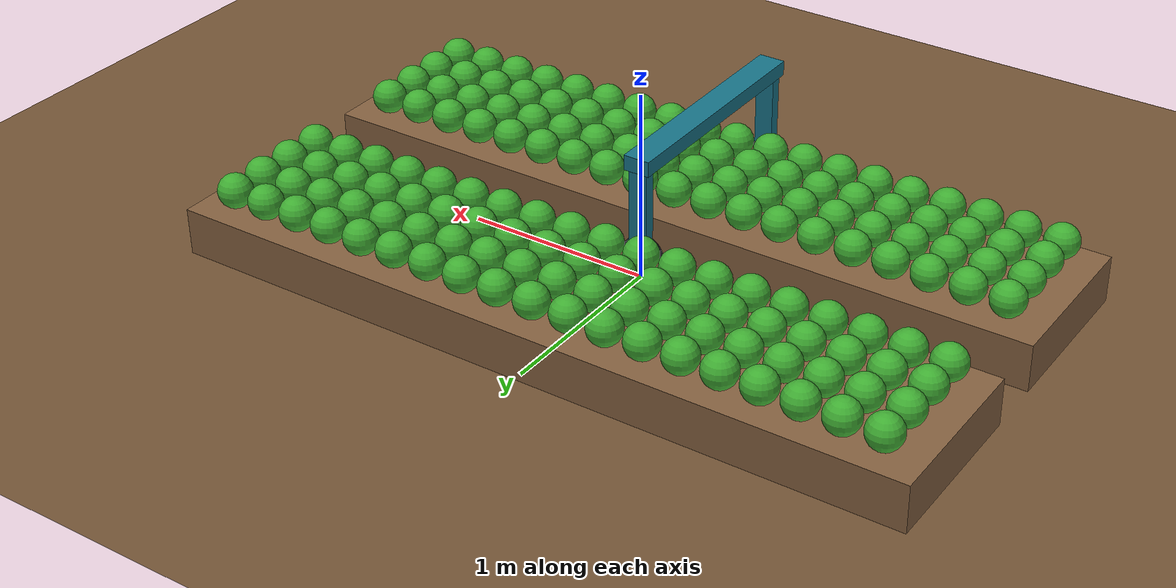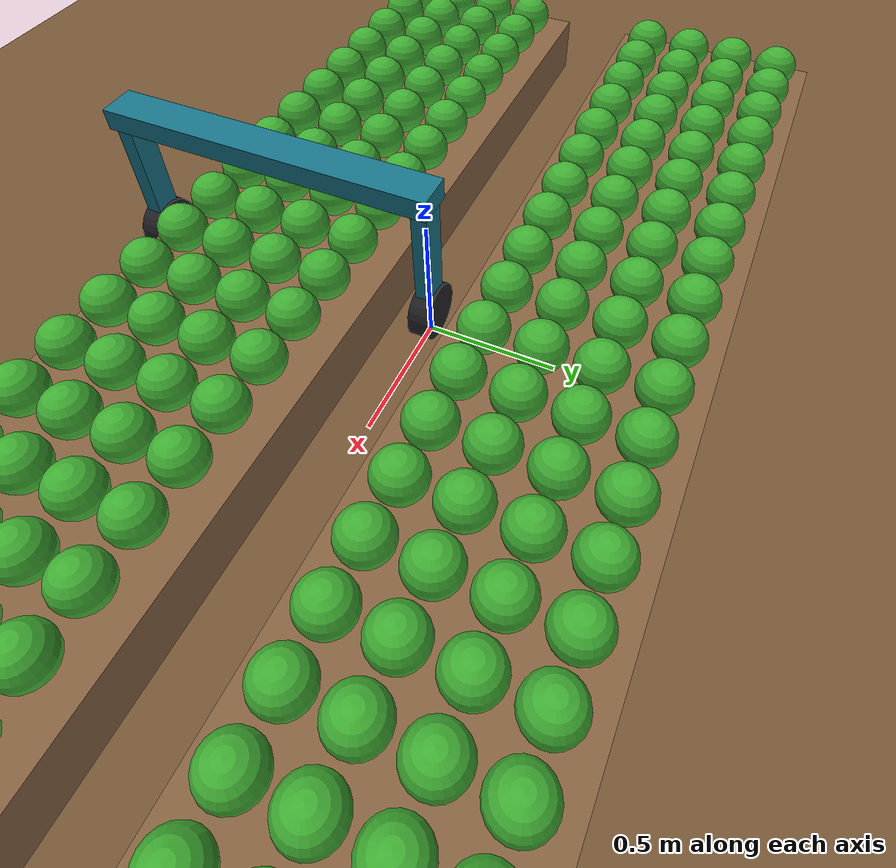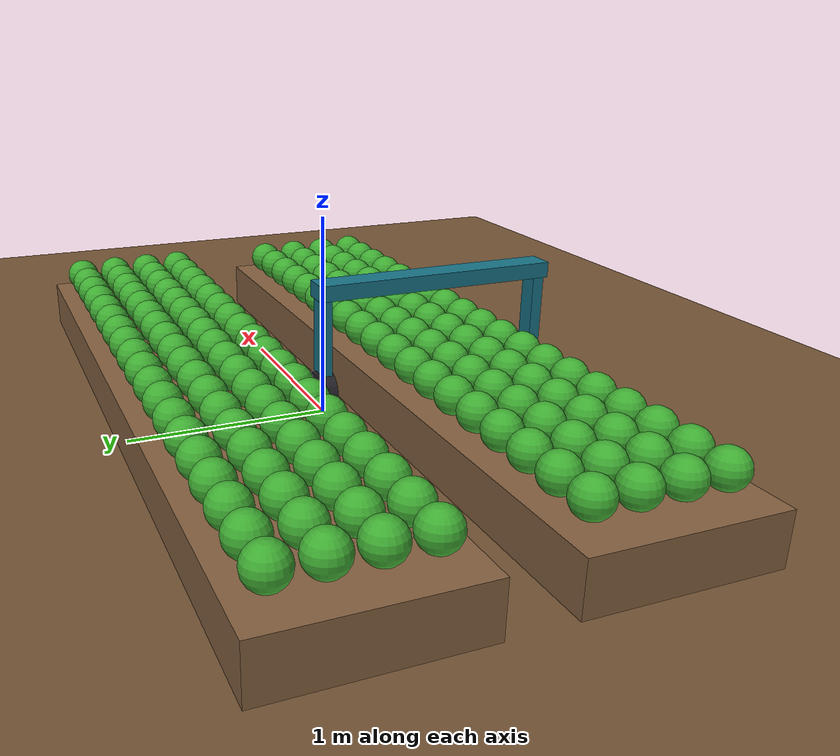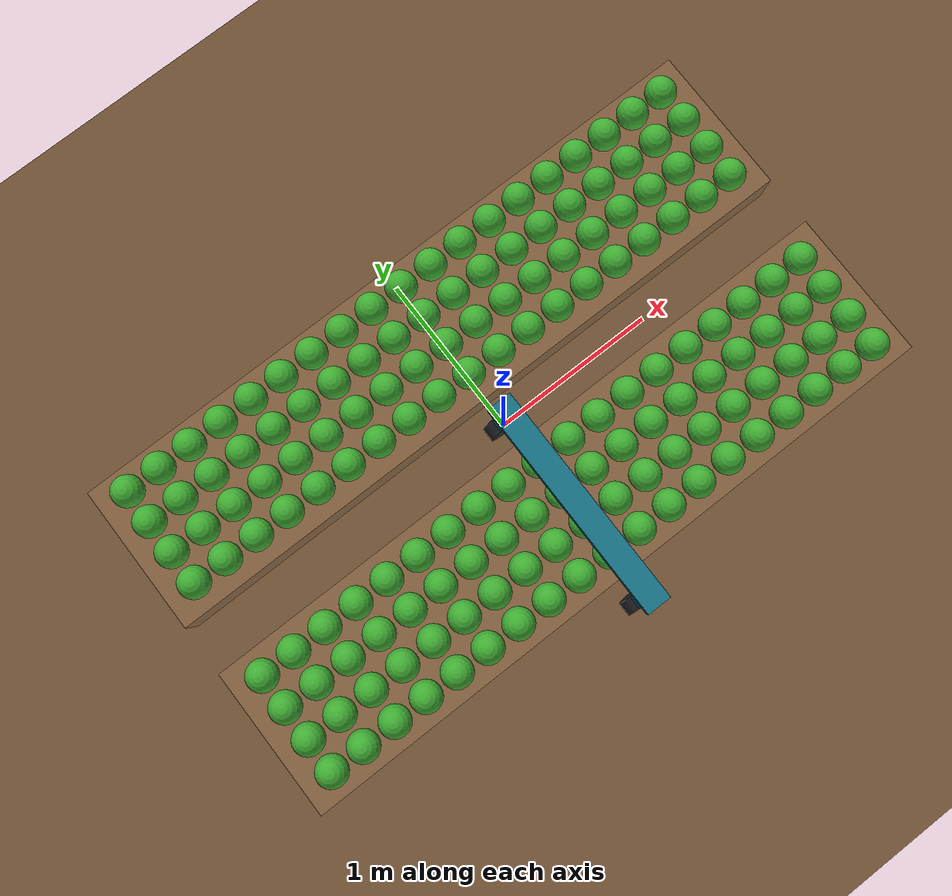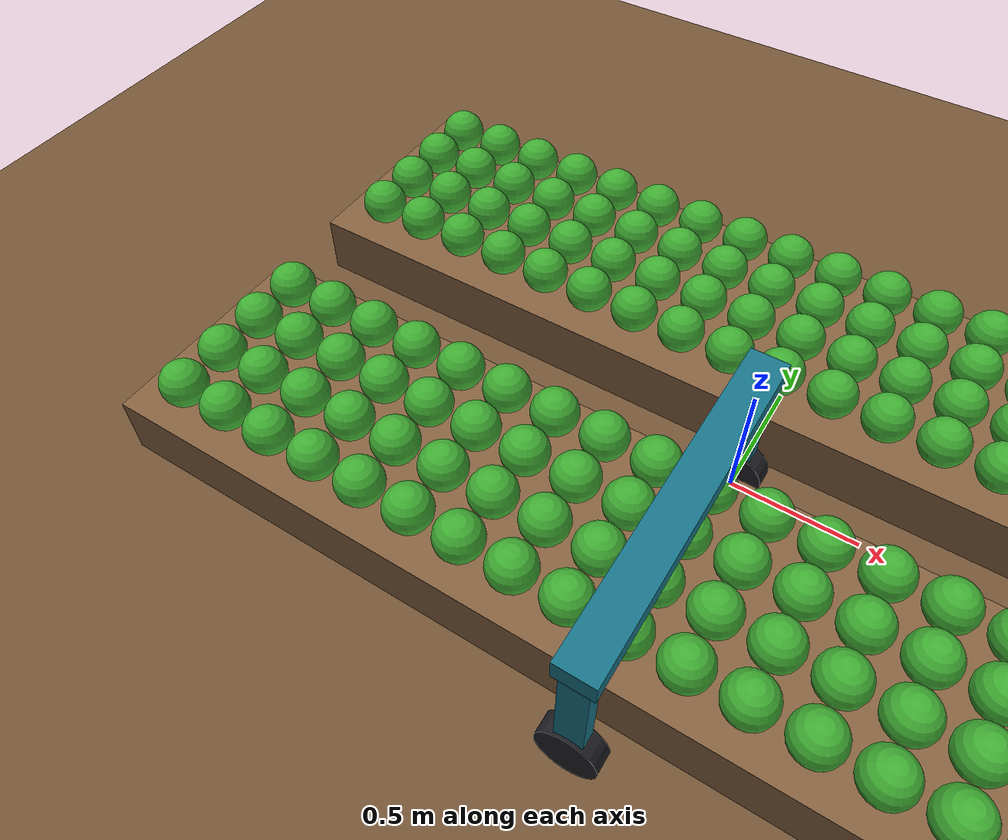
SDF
<?xml version="1.0" ?>
<sdf version="1.9">
  <world name="garden">
    <physics name="1ms" type="ignored">
      <max_step_size>0.001</max_step_size>
      <real_time_factor>1.0</real_time_factor>
    </physics>
    <plugin filename="ignition-gazebo-physics-system"
            name="ignition::gazebo::systems::Physics"/>
    <plugin filename="ignition-gazebo-sensors-system"
            name="ignition::gazebo::systems::Sensors">
      <render_engine>ogre2</render_engine>
    </plugin>
    <plugin filename="ignition-gazebo-scene-broadcaster-system"
            name="ignition::gazebo::systems::SceneBroadcaster"/>

    <light type="directional" name="sun">
      <cast_shadows>true</cast_shadows>
      <pose>0 0 10 0 0 0</pose>
      <diffuse>1 1 1 1</diffuse>
      <specular>0.3 0.3 0.3 1</specular>
      <direction>-0.4 0.5 -0.85</direction>
    </light>

    <!-- 고랑 바닥 = 기준면 z=0. 로봇 바퀴가 굴러가는 곳. -->
    <model name="furrow_floor">
      <static>true</static>
      <link name="link">
        <collision name="collision">
          <geometry><plane><normal>0 0 1</normal><size>30 30</size></plane></geometry>
        </collision>
        <visual name="visual">
          <geometry><plane><normal>0 0 1</normal><size>30 30</size></plane></geometry>
          <material>
            <ambient>0.28 0.20 0.13 1</ambient>
            <diffuse>0.45 0.33 0.21 1</diffuse>
          </material>
        </visual>
      </link>
    </model>

    <!-- 두둑 1 · 중심 y=-0.60m · 윗면 z=0.25m -->
    <model name="bed_1">
      <static>true</static>
      <pose>0 -0.600 0.125 0 0 0</pose>
      <link name="link">
        <collision name="collision">
          <geometry><box><size>4.00 0.90 0.25</size></box></geometry>
        </collision>
        <visual name="visual">
          <geometry><box><size>4.00 0.90 0.25</size></box></geometry>
          <material>
            <ambient>0.32 0.23 0.15 1</ambient>
            <diffuse>0.52 0.38 0.25 1</diffuse>
          </material>
        </visual>
      </link>
    </model>

    <model name="crop_1_0_0">
      <static>true</static>
      <pose>-1.800 -0.900 0.350 0 0 0</pose>
      <link name="link"><visual name="visual">
        <geometry><sphere><radius>0.09</radius></sphere></geometry>
        <material><ambient>0.10 0.30 0.08 1</ambient>
                  <diffuse>0.25 0.68 0.20 1</diffuse></material>
      </visual></link>
    </model>
    <model name="crop_1_0_1">
      <static>true</static>
      <pose>-1.600 -0.900 0.350 0 0 0</pose>
      <link name="link"><visual name="visual">
        <geometry><sphere><radius>0.09</radius></sphere></geometry>
        <material><ambient>0.10 0.30 0.08 1</ambient>
                  <diffuse>0.25 0.68 0.20 1</diffuse></material>
      </visual></link>
    </model>
    <model name="crop_1_0_2">
      <static>true</static>
      <pose>-1.400 -0.900 0.350 0 0 0</pose>
      <link name="link"><visual name="visual">
        <geometry><sphere><radius>0.09</radius></sphere></geometry>
        <material><ambient>0.10 0.30 0.08 1</ambient>
                  <diffuse>0.25 0.68 0.20 1</diffuse></material>
      </visual></link>
    </model>
    <model name="crop_1_0_3">
      <static>true</static>
      <pose>-1.200 -0.900 0.350 0 0 0</pose>
      <link name="link"><visual name="visual">
        <geometry><sphere><radius>0.09</radius></sphere></geometry>
        <material><ambient>0.10 0.30 0.08 1</ambient>
                  <diffuse>0.25 0.68 0.20 1</diffuse></material>
      </visual></link>
    </model>
    <model name="crop_1_0_4">
      <static>true</static>
      <pose>-1.000 -0.900 0.350 0 0 0</pose>
      <link name="link"><visual name="visual">
        <geometry><sphere><radius>0.09</radius></sphere></geometry>
        <material><ambient>0.10 0.30 0.08 1</ambient>
                  <diffuse>0.25 0.68 0.20 1</diffuse></material>
      </visual></link>
    </model>
    <model name="crop_1_0_5">
      <static>true</static>
      <pose>-0.800 -0.900 0.350 0 0 0</pose>
      <link name="link"><visual name="visual">
        <geometry><sphere><radius>0.09</radius></sphere></geometry>
        <material><ambient>0.10 0.30 0.08 1</ambient>
                  <diffuse>0.25 0.68 0.20 1</diffuse></material>
      </visual></link>
    </model>
    <model name="crop_1_0_6">
      <static>true</static>
      <pose>-0.600 -0.900 0.350 0 0 0</pose>
      <link name="link"><visual name="visual">
        <geometry><sphere><radius>0.09</radius></sphere></geometry>
        <material><ambient>0.10 0.30 0.08 1</ambient>
                  <diffuse>0.25 0.68 0.20 1</diffuse></material>
      </visual></link>
    </model>
    <model name="crop_1_0_7">
      <static>true</static>
      <pose>-0.400 -0.900 0.350 0 0 0</pose>
      <link name="link"><visual name="visual">
        <geometry><sphere><radius>0.09</radius></sphere></geometry>
        <material><ambient>0.10 0.30 0.08 1</ambient>
                  <diffuse>0.25 0.68 0.20 1</diffuse></material>
      </visual></link>
    </model>
    <model name="crop_1_0_8">
      <static>true</static>
      <pose>-0.200 -0.900 0.350 0 0 0</pose>
      <link name="link"><visual name="visual">
        <geometry><sphere><radius>0.09</radius></sphere></geometry>
        <material><ambient>0.10 0.30 0.08 1</ambient>
                  <diffuse>0.25 0.68 0.20 1</diffuse></material>
      </visual></link>
    </model>
    <model name="crop_1_0_9">
      <static>true</static>
      <pose>0.000 -0.900 0.350 0 0 0</pose>
      <link name="link"><visual name="visual">
        <geometry><sphere><radius>0.09</radius></sphere></geometry>
        <material><ambient>0.10 0.30 0.08 1</ambient>
                  <diffuse>0.25 0.68 0.20 1</diffuse></material>
      </visual></link>
    </model>
    <model name="crop_1_0_10">
      <static>true</static>
      <pose>0.200 -0.900 0.350 0 0 0</pose>
      <link name="link"><visual name="visual">
        <geometry><sphere><radius>0.09</radius></sphere></geometry>
        <material><ambient>0.10 0.30 0.08 1</ambient>
                  <diffuse>0.25 0.68 0.20 1</diffuse></material>
      </visual></link>
    </model>
    <model name="crop_1_0_11">
      <static>true</static>
      <pose>0.400 -0.900 0.350 0 0 0</pose>
      <link name="link"><visual name="visual">
        <geometry><sphere><radius>0.09</radius></sphere></geometry>
        <material><ambient>0.10 0.30 0.08 1</ambient>
                  <diffuse>0.25 0.68 0.20 1</diffuse></material>
      </visual></link>
    </model>
    <model name="crop_1_0_12">
      <static>true</static>
      <pose>0.600 -0.900 0.350 0 0 0</pose>
      <link name="link"><visual name="visual">
        <geometry><sphere><radius>0.09</radius></sphere></geometry>
        <material><ambient>0.10 0.30 0.08 1</ambient>
                  <diffuse>0.25 0.68 0.20 1</diffuse></material>
      </visual></link>
    </model>
    <model name="crop_1_0_13">
      <static>true</static>
      <pose>0.800 -0.900 0.350 0 0 0</pose>
      <link name="link"><visual name="visual">
        <geometry><sphere><radius>0.09</radius></sphere></geometry>
        <material><ambient>0.10 0.30 0.08 1</ambient>
                  <diffuse>0.25 0.68 0.20 1</diffuse></material>
      </visual></link>
    </model>
    <model name="crop_1_0_14">
      <static>true</static>
      <pose>1.000 -0.900 0.350 0 0 0</pose>
      <link name="link"><visual name="visual">
        <geometry><sphere><radius>0.09</radius></sphere></geometry>
        <material><ambient>0.10 0.30 0.08 1</ambient>
                  <diffuse>0.25 0.68 0.20 1</diffuse></material>
      </visual></link>
    </model>
    <model name="crop_1_0_15">
      <static>true</static>
      <pose>1.200 -0.900 0.350 0 0 0</pose>
      <link name="link"><visual name="visual">
        <geometry><sphere><radius>0.09</radius></sphere></geometry>
        <material><ambient>0.10 0.30 0.08 1</ambient>
                  <diffuse>0.25 0.68 0.20 1</diffuse></material>
      </visual></link>
    </model>
    <model name="crop_1_0_16">
      <static>true</static>
      <pose>1.400 -0.900 0.350 0 0 0</pose>
      <link name="link"><visual name="visual">
        <geometry><sphere><radius>0.09</radius></sphere></geometry>
        <material><ambient>0.10 0.30 0.08 1</ambient>
                  <diffuse>0.25 0.68 0.20 1</diffuse></material>
      </visual></link>
    </model>
    <model name="crop_1_0_17">
      <static>true</static>
      <pose>1.600 -0.900 0.350 0 0 0</pose>
      <link name="link"><visual name="visual">
        <geometry><sphere><radius>0.09</radius></sphere></geometry>
        <material><ambient>0.10 0.30 0.08 1</ambient>
                  <diffuse>0.25 0.68 0.20 1</diffuse></material>
      </visual></link>
    </model>
    <model name="crop_1_0_18">
      <static>true</static>
      <pose>1.800 -0.900 0.350 0 0 0</pose>
      <link name="link"><visual name="visual">
        <geometry><sphere><radius>0.09</radius></sphere></geometry>
        <material><ambient>0.10 0.30 0.08 1</ambient>
                  <diffuse>0.25 0.68 0.20 1</diffuse></material>
      </visual></link>
    </model>
    <model name="crop_1_1_0">
      <static>true</static>
      <pose>-1.800 -0.700 0.350 0 0 0</pose>
      <link name="link"><visual name="visual">
        <geometry><sphere><radius>0.09</radius></sphere></geometry>
        <material><ambient>0.10 0.30 0.08 1</ambient>
                  <diffuse>0.25 0.68 0.20 1</diffuse></material>
      </visual></link>
    </model>
    <model name="crop_1_1_1">
      <static>true</static>
      <pose>-1.600 -0.700 0.350 0 0 0</pose>
      <link name="link"><visual name="visual">
        <geometry><sphere><radius>0.09</radius></sphere></geometry>
        <material><ambient>0.10 0.30 0.08 1</ambient>
                  <diffuse>0.25 0.68 0.20 1</diffuse></material>
      </visual></link>
    </model>
    <model name="crop_1_1_2">
      <static>true</static>
      <pose>-1.400 -0.700 0.350 0 0 0</pose>
      <link name="link"><visual name="visual">
        <geometry><sphere><radius>0.09</radius></sphere></geometry>
        <material><ambient>0.10 0.30 0.08 1</ambient>
                  <diffuse>0.25 0.68 0.20 1</diffuse></material>
      </visual></link>
    </model>
    <model name="crop_1_1_3">
      <static>true</static>
      <pose>-1.200 -0.700 0.350 0 0 0</pose>
      <link name="link"><visual name="visual">
        <geometry><sphere><radius>0.09</radius></sphere></geometry>
        <material><ambient>0.10 0.30 0.08 1</ambient>
                  <diffuse>0.25 0.68 0.20 1</diffuse></material>
      </visual></link>
    </model>
    <model name="crop_1_1_4">
      <static>true</static>
      <pose>-1.000 -0.700 0.350 0 0 0</pose>
      <link name="link"><visual name="visual">
        <geometry><sphere><radius>0.09</radius></sphere></geometry>
        <material><ambient>0.10 0.30 0.08 1</ambient>
                  <diffuse>0.25 0.68 0.20 1</diffuse></material>
      </visual></link>
    </model>
    <model name="crop_1_1_5">
      <static>true</static>
      <pose>-0.800 -0.700 0.350 0 0 0</pose>
      <link name="link"><visual name="visual">
        <geometry><sphere><radius>0.09</radius></sphere></geometry>
        <material><ambient>0.10 0.30 0.08 1</ambient>
                  <diffuse>0.25 0.68 0.20 1</diffuse></material>
      </visual></link>
    </model>
    <model name="crop_1_1_6">
      <static>true</static>
      <pose>-0.600 -0.700 0.350 0 0 0</pose>
      <link name="link"><visual name="visual">
        <geometry><sphere><radius>0.09</radius></sphere></geometry>
        <material><ambient>0.10 0.30 0.08 1</ambient>
                  <diffuse>0.25 0.68 0.20 1</diffuse></material>
      </visual></link>
    </model>
    <model name="crop_1_1_7">
      <static>true</static>
      <pose>-0.400 -0.700 0.350 0 0 0</pose>
      <link name="link"><visual name="visual">
        <geometry><sphere><radius>0.09</radius></sphere></geometry>
        <material><ambient>0.10 0.30 0.08 1</ambient>
                  <diffuse>0.25 0.68 0.20 1</diffuse></material>
      </visual></link>
    </model>
    <model name="crop_1_1_8">
      <static>true</static>
      <pose>-0.200 -0.700 0.350 0 0 0</pose>
      <link name="link"><visual name="visual">
        <geometry><sphere><radius>0.09</radius></sphere></geometry>
        <material><ambient>0.10 0.30 0.08 1</ambient>
                  <diffuse>0.25 0.68 0.20 1</diffuse></material>
      </visual></link>
    </model>
    <model name="crop_1_1_9">
      <static>true</static>
      <pose>0.000 -0.700 0.350 0 0 0</pose>
      <link name="link"><visual name="visual">
        <geometry><sphere><radius>0.09</radius></sphere></geometry>
        <material><ambient>0.10 0.30 0.08 1</ambient>
                  <diffuse>0.25 0.68 0.20 1</diffuse></material>
      </visual></link>
    </model>
    <model name="crop_1_1_10">
      <static>true</static>
      <pose>0.200 -0.700 0.350 0 0 0</pose>
      <link name="link"><visual name="visual">
        <geometry><sphere><radius>0.09</radius></sphere></geometry>
        <material><ambient>0.10 0.30 0.08 1</ambient>
                  <diffuse>0.25 0.68 0.20 1</diffuse></material>
      </visual></link>
    </model>
    <model name="crop_1_1_11">
      <static>true</static>
      <pose>0.400 -0.700 0.350 0 0 0</pose>
      <link name="link"><visual name="visual">
        <geometry><sphere><radius>0.09</radius></sphere></geometry>
        <material><ambient>0.10 0.30 0.08 1</ambient>
                  <diffuse>0.25 0.68 0.20 1</diffuse></material>
      </visual></link>
    </model>
    <model name="crop_1_1_12">
      <static>true</static>
      <pose>0.600 -0.700 0.350 0 0 0</pose>
      <link name="link"><visual name="visual">
        <geometry><sphere><radius>0.09</radius></sphere></geometry>
        <material><ambient>0.10 0.30 0.08 1</ambient>
                  <diffuse>0.25 0.68 0.20 1</diffuse></material>
      </visual></link>
    </model>
    <model name="crop_1_1_13">
      <static>true</static>
      <pose>0.800 -0.700 0.350 0 0 0</pose>
      <link name="link"><visual name="visual">
        <geometry><sphere><radius>0.09</radius></sphere></geometry>
        <material><ambient>0.10 0.30 0.08 1</ambient>
                  <diffuse>0.25 0.68 0.20 1</diffuse></material>
      </visual></link>
    </model>
    <model name="crop_1_1_14">
      <static>true</static>
      <pose>1.000 -0.700 0.350 0 0 0</pose>
      <link name="link"><visual name="visual">
        <geometry><sphere><radius>0.09</radius></sphere></geometry>
        <material><ambient>0.10 0.30 0.08 1</ambient>
                  <diffuse>0.25 0.68 0.20 1</diffuse></material>
      </visual></link>
    </model>
    <model name="crop_1_1_15">
      <static>true</static>
      <pose>1.200 -0.700 0.350 0 0 0</pose>
      <link name="link"><visual name="visual">
        <geometry><sphere><radius>0.09</radius></sphere></geometry>
        <material><ambient>0.10 0.30 0.08 1</ambient>
                  <diffuse>0.25 0.68 0.20 1</diffuse></material>
      </visual></link>
    </model>
    <model name="crop_1_1_16">
      <static>true</static>
      <pose>1.400 -0.700 0.350 0 0 0</pose>
      <link name="link"><visual name="visual">
        <geometry><sphere><radius>0.09</radius></sphere></geometry>
        <material><ambient>0.10 0.30 0.08 1</ambient>
                  <diffuse>0.25 0.68 0.20 1</diffuse></material>
      </visual></link>
    </model>
    <model name="crop_1_1_17">
      <static>true</static>
      <pose>1.600 -0.700 0.350 0 0 0</pose>
      <link name="link"><visual name="visual">
        <geometry><sphere><radius>0.09</radius></sphere></geometry>
        <material><ambient>0.10 0.30 0.08 1</ambient>
                  <diffuse>0.25 0.68 0.20 1</diffuse></material>
      </visual></link>
    </model>
    <model name="crop_1_1_18">
      <static>true</static>
      <pose>1.800 -0.700 0.350 0 0 0</pose>
      <link name="link"><visual name="visual">
        <geometry><sphere><radius>0.09</radius></sphere></geometry>
        <material><ambient>0.10 0.30 0.08 1</ambient>
                  <diffuse>0.25 0.68 0.20 1</diffuse></material>
      </visual></link>
    </model>
    <model name="crop_1_2_0">
      <static>true</static>
      <pose>-1.800 -0.500 0.350 0 0 0</pose>
      <link name="link"><visual name="visual">
        <geometry><sphere><radius>0.09</radius></sphere></geometry>
        <material><ambient>0.10 0.30 0.08 1</ambient>
                  <diffuse>0.25 0.68 0.20 1</diffuse></material>
      </visual></link>
    </model>
    <model name="crop_1_2_1">
      <static>true</static>
      <pose>-1.600 -0.500 0.350 0 0 0</pose>
      <link name="link"><visual name="visual">
        <geometry><sphere><radius>0.09</radius></sphere></geometry>
        <material><ambient>0.10 0.30 0.08 1</ambient>
                  <diffuse>0.25 0.68 0.20 1</diffuse></material>
      </visual></link>
    </model>
    <model name="crop_1_2_2">
      <static>true</static>
      <pose>-1.400 -0.500 0.350 0 0 0</pose>
      <link name="link"><visual name="visual">
        <geometry><sphere><radius>0.09</radius></sphere></geometry>
        <material><ambient>0.10 0.30 0.08 1</ambient>
                  <diffuse>0.25 0.68 0.20 1</diffuse></material>
      </visual></link>
    </model>
    <model name="crop_1_2_3">
      <static>true</static>
      <pose>-1.200 -0.500 0.350 0 0 0</pose>
      <link name="link"><visual name="visual">
        <geometry><sphere><radius>0.09</radius></sphere></geometry>
        <material><ambient>0.10 0.30 0.08 1</ambient>
                  <diffuse>0.25 0.68 0.20 1</diffuse></material>
      </visual></link>
    </model>
    <model name="crop_1_2_4">
      <static>true</static>
      <pose>-1.000 -0.500 0.350 0 0 0</pose>
      <link name="link"><visual name="visual">
        <geometry><sphere><radius>0.09</radius></sphere></geometry>
        <material><ambient>0.10 0.30 0.08 1</ambient>
                  <diffuse>0.25 0.68 0.20 1</diffuse></material>
      </visual></link>
    </model>
    <model name="crop_1_2_5">
      <static>true</static>
      <pose>-0.800 -0.500 0.350 0 0 0</pose>
      <link name="link"><visual name="visual">
        <geometry><sphere><radius>0.09</radius></sphere></geometry>
        <material><ambient>0.10 0.30 0.08 1</ambient>
                  <diffuse>0.25 0.68 0.20 1</diffuse></material>
      </visual></link>
    </model>
    <model name="crop_1_2_6">
      <static>true</static>
      <pose>-0.600 -0.500 0.350 0 0 0</pose>
      <link name="link"><visual name="visual">
        <geometry><sphere><radius>0.09</radius></sphere></geometry>
        <material><ambient>0.10 0.30 0.08 1</ambient>
                  <diffuse>0.25 0.68 0.20 1</diffuse></material>
      </visual></link>
    </model>
    <model name="crop_1_2_7">
      <static>true</static>
      <pose>-0.400 -0.500 0.350 0 0 0</pose>
      <link name="link"><visual name="visual">
        <geometry><sphere><radius>0.09</radius></sphere></geometry>
        <material><ambient>0.10 0.30 0.08 1</ambient>
                  <diffuse>0.25 0.68 0.20 1</diffuse></material>
      </visual></link>
    </model>
    <model name="crop_1_2_8">
      <static>true</static>
      <pose>-0.200 -0.500 0.350 0 0 0</pose>
      <link name="link"><visual name="visual">
        <geometry><sphere><radius>0.09</radius></sphere></geometry>
        <material><ambient>0.10 0.30 0.08 1</ambient>
                  <diffuse>0.25 0.68 0.20 1</diffuse></material>
      </visual></link>
    </model>
    <model name="crop_1_2_9">
      <static>true</static>
      <pose>0.000 -0.500 0.350 0 0 0</pose>
      <link name="link"><visual name="visual">
        <geometry><sphere><radius>0.09</radius></sphere></geometry>
        <material><ambient>0.10 0.30 0.08 1</ambient>
                  <diffuse>0.25 0.68 0.20 1</diffuse></material>
      </visual></link>
    </model>
    <model name="crop_1_2_10">
      <static>true</static>
      <pose>0.200 -0.500 0.350 0 0 0</pose>
      <link name="link"><visual name="visual">
        <geometry><sphere><radius>0.09</radius></sphere></geometry>
        <material><ambient>0.10 0.30 0.08 1</ambient>
                  <diffuse>0.25 0.68 0.20 1</diffuse></material>
      </visual></link>
    </model>
    <model name="crop_1_2_11">
      <static>true</static>
      <pose>0.400 -0.500 0.350 0 0 0</pose>
      <link name="link"><visual name="visual">
        <geometry><sphere><radius>0.09</radius></sphere></geometry>
        <material><ambient>0.10 0.30 0.08 1</ambient>
                  <diffuse>0.25 0.68 0.20 1</diffuse></material>
      </visual></link>
    </model>
    <model name="crop_1_2_12">
      <static>true</static>
      <pose>0.600 -0.500 0.350 0 0 0</pose>
      <link name="link"><visual name="visual">
        <geometry><sphere><radius>0.09</radius></sphere></geometry>
        <material><ambient>0.10 0.30 0.08 1</ambient>
                  <diffuse>0.25 0.68 0.20 1</diffuse></material>
      </visual></link>
    </model>
    <model name="crop_1_2_13">
      <static>true</static>
      <pose>0.800 -0.500 0.350 0 0 0</pose>
      <link name="link"><visual name="visual">
        <geometry><sphere><radius>0.09</radius></sphere></geometry>
        <material><ambient>0.10 0.30 0.08 1</ambient>
                  <diffuse>0.25 0.68 0.20 1</diffuse></material>
      </visual></link>
    </model>
    <model name="crop_1_2_14">
      <static>true</static>
      <pose>1.000 -0.500 0.350 0 0 0</pose>
      <link name="link"><visual name="visual">
        <geometry><sphere><radius>0.09</radius></sphere></geometry>
        <material><ambient>0.10 0.30 0.08 1</ambient>
                  <diffuse>0.25 0.68 0.20 1</diffuse></material>
      </visual></link>
    </model>
    <model name="crop_1_2_15">
      <static>true</static>
      <pose>1.200 -0.500 0.350 0 0 0</pose>
      <link name="link"><visual name="visual">
        <geometry><sphere><radius>0.09</radius></sphere></geometry>
        <material><ambient>0.10 0.30 0.08 1</ambient>
                  <diffuse>0.25 0.68 0.20 1</diffuse></material>
      </visual></link>
    </model>
    <model name="crop_1_2_16">
      <static>true</static>
      <pose>1.400 -0.500 0.350 0 0 0</pose>
      <link name="link"><visual name="visual">
        <geometry><sphere><radius>0.09</radius></sphere></geometry>
        <material><ambient>0.10 0.30 0.08 1</ambient>
                  <diffuse>0.25 0.68 0.20 1</diffuse></material>
      </visual></link>
    </model>
    <model name="crop_1_2_17">
      <static>true</static>
      <pose>1.600 -0.500 0.350 0 0 0</pose>
      <link name="link"><visual name="visual">
        <geometry><sphere><radius>0.09</radius></sphere></geometry>
        <material><ambient>0.10 0.30 0.08 1</ambient>
                  <diffuse>0.25 0.68 0.20 1</diffuse></material>
      </visual></link>
    </model>
    <model name="crop_1_2_18">
      <static>true</static>
      <pose>1.800 -0.500 0.350 0 0 0</pose>
      <link name="link"><visual name="visual">
        <geometry><sphere><radius>0.09</radius></sphere></geometry>
        <material><ambient>0.10 0.30 0.08 1</ambient>
                  <diffuse>0.25 0.68 0.20 1</diffuse></material>
      </visual></link>
    </model>
    <model name="crop_1_3_0">
      <static>true</static>
      <pose>-1.800 -0.300 0.350 0 0 0</pose>
      <link name="link"><visual name="visual">
        <geometry><sphere><radius>0.09</radius></sphere></geometry>
        <material><ambient>0.10 0.30 0.08 1</ambient>
                  <diffuse>0.25 0.68 0.20 1</diffuse></material>
      </visual></link>
    </model>
    <model name="crop_1_3_1">
      <static>true</static>
      <pose>-1.600 -0.300 0.350 0 0 0</pose>
      <link name="link"><visual name="visual">
        <geometry><sphere><radius>0.09</radius></sphere></geometry>
        <material><ambient>0.10 0.30 0.08 1</ambient>
                  <diffuse>0.25 0.68 0.20 1</diffuse></material>
      </visual></link>
    </model>
    <model name="crop_1_3_2">
      <static>true</static>
      <pose>-1.400 -0.300 0.350 0 0 0</pose>
      <link name="link"><visual name="visual">
        <geometry><sphere><radius>0.09</radius></sphere></geometry>
        <material><ambient>0.10 0.30 0.08 1</ambient>
                  <diffuse>0.25 0.68 0.20 1</diffuse></material>
      </visual></link>
    </model>
    <model name="crop_1_3_3">
      <static>true</static>
      <pose>-1.200 -0.300 0.350 0 0 0</pose>
      <link name="link"><visual name="visual">
        <geometry><sphere><radius>0.09</radius></sphere></geometry>
        <material><ambient>0.10 0.30 0.08 1</ambient>
                  <diffuse>0.25 0.68 0.20 1</diffuse></material>
      </visual></link>
    </model>
    <model name="crop_1_3_4">
      <static>true</static>
      <pose>-1.000 -0.300 0.350 0 0 0</pose>
      <link name="link"><visual name="visual">
        <geometry><sphere><radius>0.09</radius></sphere></geometry>
        <material><ambient>0.10 0.30 0.08 1</ambient>
                  <diffuse>0.25 0.68 0.20 1</diffuse></material>
      </visual></link>
    </model>
    <model name="crop_1_3_5">
      <static>true</static>
      <pose>-0.800 -0.300 0.350 0 0 0</pose>
      <link name="link"><visual name="visual">
        <geometry><sphere><radius>0.09</radius></sphere></geometry>
        <material><ambient>0.10 0.30 0.08 1</ambient>
                  <diffuse>0.25 0.68 0.20 1</diffuse></material>
      </visual></link>
    </model>
    <model name="crop_1_3_6">
      <static>true</static>
      <pose>-0.600 -0.300 0.350 0 0 0</pose>
      <link name="link"><visual name="visual">
        <geometry><sphere><radius>0.09</radius></sphere></geometry>
        <material><ambient>0.10 0.30 0.08 1</ambient>
                  <diffuse>0.25 0.68 0.20 1</diffuse></material>
      </visual></link>
    </model>
    <model name="crop_1_3_7">
      <static>true</static>
      <pose>-0.400 -0.300 0.350 0 0 0</pose>
      <link name="link"><visual name="visual">
        <geometry><sphere><radius>0.09</radius></sphere></geometry>
        <material><ambient>0.10 0.30 0.08 1</ambient>
                  <diffuse>0.25 0.68 0.20 1</diffuse></material>
      </visual></link>
    </model>
    <model name="crop_1_3_8">
      <static>true</static>
      <pose>-0.200 -0.300 0.350 0 0 0</pose>
      <link name="link"><visual name="visual">
        <geometry><sphere><radius>0.09</radius></sphere></geometry>
        <material><ambient>0.10 0.30 0.08 1</ambient>
                  <diffuse>0.25 0.68 0.20 1</diffuse></material>
      </visual></link>
    </model>
    <model name="crop_1_3_9">
      <static>true</static>
      <pose>0.000 -0.300 0.350 0 0 0</pose>
      <link name="link"><visual name="visual">
        <geometry><sphere><radius>0.09</radius></sphere></geometry>
        <material><ambient>0.10 0.30 0.08 1</ambient>
                  <diffuse>0.25 0.68 0.20 1</diffuse></material>
      </visual></link>
    </model>
    <model name="crop_1_3_10">
      <static>true</static>
      <pose>0.200 -0.300 0.350 0 0 0</pose>
      <link name="link"><visual name="visual">
        <geometry><sphere><radius>0.09</radius></sphere></geometry>
        <material><ambient>0.10 0.30 0.08 1</ambient>
                  <diffuse>0.25 0.68 0.20 1</diffuse></material>
      </visual></link>
    </model>
    <model name="crop_1_3_11">
      <static>true</static>
      <pose>0.400 -0.300 0.350 0 0 0</pose>
      <link name="link"><visual name="visual">
        <geometry><sphere><radius>0.09</radius></sphere></geometry>
        <material><ambient>0.10 0.30 0.08 1</ambient>
                  <diffuse>0.25 0.68 0.20 1</diffuse></material>
      </visual></link>
    </model>
    <model name="crop_1_3_12">
      <static>true</static>
      <pose>0.600 -0.300 0.350 0 0 0</pose>
      <link name="link"><visual name="visual">
        <geometry><sphere><radius>0.09</radius></sphere></geometry>
        <material><ambient>0.10 0.30 0.08 1</ambient>
                  <diffuse>0.25 0.68 0.20 1</diffuse></material>
      </visual></link>
    </model>
    <model name="crop_1_3_13">
      <static>true</static>
      <pose>0.800 -0.300 0.350 0 0 0</pose>
      <link name="link"><visual name="visual">
        <geometry><sphere><radius>0.09</radius></sphere></geometry>
        <material><ambient>0.10 0.30 0.08 1</ambient>
                  <diffuse>0.25 0.68 0.20 1</diffuse></material>
      </visual></link>
    </model>
    <model name="crop_1_3_14">
      <static>true</static>
      <pose>1.000 -0.300 0.350 0 0 0</pose>
      <link name="link"><visual name="visual">
        <geometry><sphere><radius>0.09</radius></sphere></geometry>
        <material><ambient>0.10 0.30 0.08 1</ambient>
                  <diffuse>0.25 0.68 0.20 1</diffuse></material>
      </visual></link>
    </model>
    <model name="crop_1_3_15">
      <static>true</static>
      <pose>1.200 -0.300 0.350 0 0 0</pose>
      <link name="link"><visual name="visual">
        <geometry><sphere><radius>0.09</radius></sphere></geometry>
        <material><ambient>0.10 0.30 0.08 1</ambient>
                  <diffuse>0.25 0.68 0.20 1</diffuse></material>
      </visual></link>
    </model>
    <model name="crop_1_3_16">
      <static>true</static>
      <pose>1.400 -0.300 0.350 0 0 0</pose>
      <link name="link"><visual name="visual">
        <geometry><sphere><radius>0.09</radius></sphere></geometry>
        <material><ambient>0.10 0.30 0.08 1</ambient>
                  <diffuse>0.25 0.68 0.20 1</diffuse></material>
      </visual></link>
    </model>
    <model name="crop_1_3_17">
      <static>true</static>
      <pose>1.600 -0.300 0.350 0 0 0</pose>
      <link name="link"><visual name="visual">
        <geometry><sphere><radius>0.09</radius></sphere></geometry>
        <material><ambient>0.10 0.30 0.08 1</ambient>
                  <diffuse>0.25 0.68 0.20 1</diffuse></material>
      </visual></link>
    </model>
    <model name="crop_1_3_18">
      <static>true</static>
      <pose>1.800 -0.300 0.350 0 0 0</pose>
      <link name="link"><visual name="visual">
        <geometry><sphere><radius>0.09</radius></sphere></geometry>
        <material><ambient>0.10 0.30 0.08 1</ambient>
                  <diffuse>0.25 0.68 0.20 1</diffuse></material>
      </visual></link>
    </model>

    <!-- 두둑 2 · 중심 y=+0.60m · 윗면 z=0.25m -->
    <model name="bed_2">
      <static>true</static>
      <pose>0 0.600 0.125 0 0 0</pose>
      <link name="link">
        <collision name="collision">
          <geometry><box><size>4.00 0.90 0.25</size></box></geometry>
        </collision>
        <visual name="visual">
          <geometry><box><size>4.00 0.90 0.25</size></box></geometry>
          <material>
            <ambient>0.32 0.23 0.15 1</ambient>
            <diffuse>0.52 0.38 0.25 1</diffuse>
          </material>
        </visual>
      </link>
    </model>

    <model name="crop_2_0_0">
      <static>true</static>
      <pose>-1.800 0.300 0.350 0 0 0</pose>
      <link name="link"><visual name="visual">
        <geometry><sphere><radius>0.09</radius></sphere></geometry>
        <material><ambient>0.10 0.30 0.08 1</ambient>
                  <diffuse>0.25 0.68 0.20 1</diffuse></material>
      </visual></link>
    </model>
    <model name="crop_2_0_1">
      <static>true</static>
      <pose>-1.600 0.300 0.350 0 0 0</pose>
      <link name="link"><visual name="visual">
        <geometry><sphere><radius>0.09</radius></sphere></geometry>
        <material><ambient>0.10 0.30 0.08 1</ambient>
                  <diffuse>0.25 0.68 0.20 1</diffuse></material>
      </visual></link>
    </model>
    <model name="crop_2_0_2">
      <static>true</static>
      <pose>-1.400 0.300 0.350 0 0 0</pose>
      <link name="link"><visual name="visual">
        <geometry><sphere><radius>0.09</radius></sphere></geometry>
        <material><ambient>0.10 0.30 0.08 1</ambient>
                  <diffuse>0.25 0.68 0.20 1</diffuse></material>
      </visual></link>
    </model>
    <model name="crop_2_0_3">
      <static>true</static>
      <pose>-1.200 0.300 0.350 0 0 0</pose>
      <link name="link"><visual name="visual">
        <geometry><sphere><radius>0.09</radius></sphere></geometry>
        <material><ambient>0.10 0.30 0.08 1</ambient>
                  <diffuse>0.25 0.68 0.20 1</diffuse></material>
      </visual></link>
    </model>
    <model name="crop_2_0_4">
      <static>true</static>
      <pose>-1.000 0.300 0.350 0 0 0</pose>
      <link name="link"><visual name="visual">
        <geometry><sphere><radius>0.09</radius></sphere></geometry>
        <material><ambient>0.10 0.30 0.08 1</ambient>
                  <diffuse>0.25 0.68 0.20 1</diffuse></material>
      </visual></link>
    </model>
    <model name="crop_2_0_5">
      <static>true</static>
      <pose>-0.800 0.300 0.350 0 0 0</pose>
      <link name="link"><visual name="visual">
        <geometry><sphere><radius>0.09</radius></sphere></geometry>
        <material><ambient>0.10 0.30 0.08 1</ambient>
                  <diffuse>0.25 0.68 0.20 1</diffuse></material>
      </visual></link>
    </model>
    <model name="crop_2_0_6">
      <static>true</static>
      <pose>-0.600 0.300 0.350 0 0 0</pose>
      <link name="link"><visual name="visual">
        <geometry><sphere><radius>0.09</radius></sphere></geometry>
        <material><ambient>0.10 0.30 0.08 1</ambient>
                  <diffuse>0.25 0.68 0.20 1</diffuse></material>
      </visual></link>
    </model>
    <model name="crop_2_0_7">
      <static>true</static>
      <pose>-0.400 0.300 0.350 0 0 0</pose>
      <link name="link"><visual name="visual">
        <geometry><sphere><radius>0.09</radius></sphere></geometry>
        <material><ambient>0.10 0.30 0.08 1</ambient>
                  <diffuse>0.25 0.68 0.20 1</diffuse></material>
      </visual></link>
    </model>
    <model name="crop_2_0_8">
      <static>true</static>
      <pose>-0.200 0.300 0.350 0 0 0</pose>
      <link name="link"><visual name="visual">
        <geometry><sphere><radius>0.09</radius></sphere></geometry>
        <material><ambient>0.10 0.30 0.08 1</ambient>
                  <diffuse>0.25 0.68 0.20 1</diffuse></material>
      </visual></link>
    </model>
    <model name="crop_2_0_9">
      <static>true</static>
      <pose>0.000 0.300 0.350 0 0 0</pose>
      <link name="link"><visual name="visual">
        <geometry><sphere><radius>0.09</radius></sphere></geometry>
        <material><ambient>0.10 0.30 0.08 1</ambient>
                  <diffuse>0.25 0.68 0.20 1</diffuse></material>
      </visual></link>
    </model>
    <model name="crop_2_0_10">
      <static>true</static>
      <pose>0.200 0.300 0.350 0 0 0</pose>
      <link name="link"><visual name="visual">
        <geometry><sphere><radius>0.09</radius></sphere></geometry>
        <material><ambient>0.10 0.30 0.08 1</ambient>
                  <diffuse>0.25 0.68 0.20 1</diffuse></material>
      </visual></link>
    </model>
    <model name="crop_2_0_11">
      <static>true</static>
      <pose>0.400 0.300 0.350 0 0 0</pose>
      <link name="link"><visual name="visual">
        <geometry><sphere><radius>0.09</radius></sphere></geometry>
        <material><ambient>0.10 0.30 0.08 1</ambient>
                  <diffuse>0.25 0.68 0.20 1</diffuse></material>
      </visual></link>
    </model>
    <model name="crop_2_0_12">
      <static>true</static>
      <pose>0.600 0.300 0.350 0 0 0</pose>
      <link name="link"><visual name="visual">
        <geometry><sphere><radius>0.09</radius></sphere></geometry>
        <material><ambient>0.10 0.30 0.08 1</ambient>
                  <diffuse>0.25 0.68 0.20 1</diffuse></material>
      </visual></link>
    </model>
    <model name="crop_2_0_13">
      <static>true</static>
      <pose>0.800 0.300 0.350 0 0 0</pose>
      <link name="link"><visual name="visual">
        <geometry><sphere><radius>0.09</radius></sphere></geometry>
        <material><ambient>0.10 0.30 0.08 1</ambient>
                  <diffuse>0.25 0.68 0.20 1</diffuse></material>
      </visual></link>
    </model>
    <model name="crop_2_0_14">
      <static>true</static>
      <pose>1.000 0.300 0.350 0 0 0</pose>
      <link name="link"><visual name="visual">
        <geometry><sphere><radius>0.09</radius></sphere></geometry>
        <material><ambient>0.10 0.30 0.08 1</ambient>
                  <diffuse>0.25 0.68 0.20 1</diffuse></material>
      </visual></link>
    </model>
    <model name="crop_2_0_15">
      <static>true</static>
      <pose>1.200 0.300 0.350 0 0 0</pose>
      <link name="link"><visual name="visual">
        <geometry><sphere><radius>0.09</radius></sphere></geometry>
        <material><ambient>0.10 0.30 0.08 1</ambient>
                  <diffuse>0.25 0.68 0.20 1</diffuse></material>
      </visual></link>
    </model>
    <model name="crop_2_0_16">
      <static>true</static>
      <pose>1.400 0.300 0.350 0 0 0</pose>
      <link name="link"><visual name="visual">
        <geometry><sphere><radius>0.09</radius></sphere></geometry>
        <material><ambient>0.10 0.30 0.08 1</ambient>
                  <diffuse>0.25 0.68 0.20 1</diffuse></material>
      </visual></link>
    </model>
    <model name="crop_2_0_17">
      <static>true</static>
      <pose>1.600 0.300 0.350 0 0 0</pose>
      <link name="link"><visual name="visual">
        <geometry><sphere><radius>0.09</radius></sphere></geometry>
        <material><ambient>0.10 0.30 0.08 1</ambient>
                  <diffuse>0.25 0.68 0.20 1</diffuse></material>
      </visual></link>
    </model>
    <model name="crop_2_0_18">
      <static>true</static>
      <pose>1.800 0.300 0.350 0 0 0</pose>
      <link name="link"><visual name="visual">
        <geometry><sphere><radius>0.09</radius></sphere></geometry>
        <material><ambient>0.10 0.30 0.08 1</ambient>
                  <diffuse>0.25 0.68 0.20 1</diffuse></material>
      </visual></link>
    </model>
    <model name="crop_2_1_0">
      <static>true</static>
      <pose>-1.800 0.500 0.350 0 0 0</pose>
      <link name="link"><visual name="visual">
        <geometry><sphere><radius>0.09</radius></sphere></geometry>
        <material><ambient>0.10 0.30 0.08 1</ambient>
                  <diffuse>0.25 0.68 0.20 1</diffuse></material>
      </visual></link>
    </model>
    <model name="crop_2_1_1">
      <static>true</static>
      <pose>-1.600 0.500 0.350 0 0 0</pose>
      <link name="link"><visual name="visual">
        <geometry><sphere><radius>0.09</radius></sphere></geometry>
        <material><ambient>0.10 0.30 0.08 1</ambient>
                  <diffuse>0.25 0.68 0.20 1</diffuse></material>
      </visual></link>
    </model>
    <model name="crop_2_1_2">
      <static>true</static>
      <pose>-1.400 0.500 0.350 0 0 0</pose>
      <link name="link"><visual name="visual">
        <geometry><sphere><radius>0.09</radius></sphere></geometry>
        <material><ambient>0.10 0.30 0.08 1</ambient>
                  <diffuse>0.25 0.68 0.20 1</diffuse></material>
      </visual></link>
    </model>
    <model name="crop_2_1_3">
      <static>true</static>
      <pose>-1.200 0.500 0.350 0 0 0</pose>
      <link name="link"><visual name="visual">
        <geometry><sphere><radius>0.09</radius></sphere></geometry>
        <material><ambient>0.10 0.30 0.08 1</ambient>
                  <diffuse>0.25 0.68 0.20 1</diffuse></material>
      </visual></link>
    </model>
    <model name="crop_2_1_4">
      <static>true</static>
      <pose>-1.000 0.500 0.350 0 0 0</pose>
      <link name="link"><visual name="visual">
        <geometry><sphere><radius>0.09</radius></sphere></geometry>
        <material><ambient>0.10 0.30 0.08 1</ambient>
                  <diffuse>0.25 0.68 0.20 1</diffuse></material>
      </visual></link>
    </model>
    <model name="crop_2_1_5">
      <static>true</static>
      <pose>-0.800 0.500 0.350 0 0 0</pose>
      <link name="link"><visual name="visual">
        <geometry><sphere><radius>0.09</radius></sphere></geometry>
        <material><ambient>0.10 0.30 0.08 1</ambient>
                  <diffuse>0.25 0.68 0.20 1</diffuse></material>
      </visual></link>
    </model>
    <model name="crop_2_1_6">
      <static>true</static>
      <pose>-0.600 0.500 0.350 0 0 0</pose>
      <link name="link"><visual name="visual">
        <geometry><sphere><radius>0.09</radius></sphere></geometry>
        <material><ambient>0.10 0.30 0.08 1</ambient>
                  <diffuse>0.25 0.68 0.20 1</diffuse></material>
      </visual></link>
    </model>
    <model name="crop_2_1_7">
      <static>true</static>
      <pose>-0.400 0.500 0.350 0 0 0</pose>
      <link name="link"><visual name="visual">
        <geometry><sphere><radius>0.09</radius></sphere></geometry>
        <material><ambient>0.10 0.30 0.08 1</ambient>
                  <diffuse>0.25 0.68 0.20 1</diffuse></material>
      </visual></link>
    </model>
    <model name="crop_2_1_8">
      <static>true</static>
      <pose>-0.200 0.500 0.350 0 0 0</pose>
      <link name="link"><visual name="visual">
        <geometry><sphere><radius>0.09</radius></sphere></geometry>
        <material><ambient>0.10 0.30 0.08 1</ambient>
                  <diffuse>0.25 0.68 0.20 1</diffuse></material>
      </visual></link>
    </model>
    <model name="crop_2_1_9">
      <static>true</static>
      <pose>0.000 0.500 0.350 0 0 0</pose>
      <link name="link"><visual name="visual">
        <geometry><sphere><radius>0.09</radius></sphere></geometry>
        <material><ambient>0.10 0.30 0.08 1</ambient>
                  <diffuse>0.25 0.68 0.20 1</diffuse></material>
      </visual></link>
    </model>
    <model name="crop_2_1_10">
      <static>true</static>
      <pose>0.200 0.500 0.350 0 0 0</pose>
      <link name="link"><visual name="visual">
        <geometry><sphere><radius>0.09</radius></sphere></geometry>
        <material><ambient>0.10 0.30 0.08 1</ambient>
                  <diffuse>0.25 0.68 0.20 1</diffuse></material>
      </visual></link>
    </model>
    <model name="crop_2_1_11">
      <static>true</static>
      <pose>0.400 0.500 0.350 0 0 0</pose>
      <link name="link"><visual name="visual">
        <geometry><sphere><radius>0.09</radius></sphere></geometry>
        <material><ambient>0.10 0.30 0.08 1</ambient>
                  <diffuse>0.25 0.68 0.20 1</diffuse></material>
      </visual></link>
    </model>
    <model name="crop_2_1_12">
      <static>true</static>
      <pose>0.600 0.500 0.350 0 0 0</pose>
      <link name="link"><visual name="visual">
        <geometry><sphere><radius>0.09</radius></sphere></geometry>
        <material><ambient>0.10 0.30 0.08 1</ambient>
                  <diffuse>0.25 0.68 0.20 1</diffuse></material>
      </visual></link>
    </model>
    <model name="crop_2_1_13">
      <static>true</static>
      <pose>0.800 0.500 0.350 0 0 0</pose>
      <link name="link"><visual name="visual">
        <geometry><sphere><radius>0.09</radius></sphere></geometry>
        <material><ambient>0.10 0.30 0.08 1</ambient>
                  <diffuse>0.25 0.68 0.20 1</diffuse></material>
      </visual></link>
    </model>
    <model name="crop_2_1_14">
      <static>true</static>
      <pose>1.000 0.500 0.350 0 0 0</pose>
      <link name="link"><visual name="visual">
        <geometry><sphere><radius>0.09</radius></sphere></geometry>
        <material><ambient>0.10 0.30 0.08 1</ambient>
                  <diffuse>0.25 0.68 0.20 1</diffuse></material>
      </visual></link>
    </model>
    <model name="crop_2_1_15">
      <static>true</static>
      <pose>1.200 0.500 0.350 0 0 0</pose>
      <link name="link"><visual name="visual">
        <geometry><sphere><radius>0.09</radius></sphere></geometry>
        <material><ambient>0.10 0.30 0.08 1</ambient>
                  <diffuse>0.25 0.68 0.20 1</diffuse></material>
      </visual></link>
    </model>
    <model name="crop_2_1_16">
      <static>true</static>
      <pose>1.400 0.500 0.350 0 0 0</pose>
      <link name="link"><visual name="visual">
        <geometry><sphere><radius>0.09</radius></sphere></geometry>
        <material><ambient>0.10 0.30 0.08 1</ambient>
                  <diffuse>0.25 0.68 0.20 1</diffuse></material>
      </visual></link>
    </model>
    <model name="crop_2_1_17">
      <static>true</static>
      <pose>1.600 0.500 0.350 0 0 0</pose>
      <link name="link"><visual name="visual">
        <geometry><sphere><radius>0.09</radius></sphere></geometry>
        <material><ambient>0.10 0.30 0.08 1</ambient>
                  <diffuse>0.25 0.68 0.20 1</diffuse></material>
      </visual></link>
    </model>
    <model name="crop_2_1_18">
      <static>true</static>
      <pose>1.800 0.500 0.350 0 0 0</pose>
      <link name="link"><visual name="visual">
        <geometry><sphere><radius>0.09</radius></sphere></geometry>
        <material><ambient>0.10 0.30 0.08 1</ambient>
                  <diffuse>0.25 0.68 0.20 1</diffuse></material>
      </visual></link>
    </model>
    <model name="crop_2_2_0">
      <static>true</static>
      <pose>-1.800 0.700 0.350 0 0 0</pose>
      <link name="link"><visual name="visual">
        <geometry><sphere><radius>0.09</radius></sphere></geometry>
        <material><ambient>0.10 0.30 0.08 1</ambient>
                  <diffuse>0.25 0.68 0.20 1</diffuse></material>
      </visual></link>
    </model>
    <model name="crop_2_2_1">
      <static>true</static>
      <pose>-1.600 0.700 0.350 0 0 0</pose>
      <link name="link"><visual name="visual">
        <geometry><sphere><radius>0.09</radius></sphere></geometry>
        <material><ambient>0.10 0.30 0.08 1</ambient>
                  <diffuse>0.25 0.68 0.20 1</diffuse></material>
      </visual></link>
    </model>
    <model name="crop_2_2_2">
      <static>true</static>
      <pose>-1.400 0.700 0.350 0 0 0</pose>
      <link name="link"><visual name="visual">
        <geometry><sphere><radius>0.09</radius></sphere></geometry>
        <material><ambient>0.10 0.30 0.08 1</ambient>
                  <diffuse>0.25 0.68 0.20 1</diffuse></material>
      </visual></link>
    </model>
    <model name="crop_2_2_3">
      <static>true</static>
      <pose>-1.200 0.700 0.350 0 0 0</pose>
      <link name="link"><visual name="visual">
        <geometry><sphere><radius>0.09</radius></sphere></geometry>
        <material><ambient>0.10 0.30 0.08 1</ambient>
                  <diffuse>0.25 0.68 0.20 1</diffuse></material>
      </visual></link>
    </model>
    <model name="crop_2_2_4">
      <static>true</static>
      <pose>-1.000 0.700 0.350 0 0 0</pose>
      <link name="link"><visual name="visual">
        <geometry><sphere><radius>0.09</radius></sphere></geometry>
        <material><ambient>0.10 0.30 0.08 1</ambient>
                  <diffuse>0.25 0.68 0.20 1</diffuse></material>
      </visual></link>
    </model>
    <model name="crop_2_2_5">
      <static>true</static>
      <pose>-0.800 0.700 0.350 0 0 0</pose>
      <link name="link"><visual name="visual">
        <geometry><sphere><radius>0.09</radius></sphere></geometry>
        <material><ambient>0.10 0.30 0.08 1</ambient>
                  <diffuse>0.25 0.68 0.20 1</diffuse></material>
      </visual></link>
    </model>
    <model name="crop_2_2_6">
      <static>true</static>
      <pose>-0.600 0.700 0.350 0 0 0</pose>
      <link name="link"><visual name="visual">
        <geometry><sphere><radius>0.09</radius></sphere></geometry>
        <material><ambient>0.10 0.30 0.08 1</ambient>
                  <diffuse>0.25 0.68 0.20 1</diffuse></material>
      </visual></link>
    </model>
    <model name="crop_2_2_7">
      <static>true</static>
      <pose>-0.400 0.700 0.350 0 0 0</pose>
      <link name="link"><visual name="visual">
        <geometry><sphere><radius>0.09</radius></sphere></geometry>
        <material><ambient>0.10 0.30 0.08 1</ambient>
                  <diffuse>0.25 0.68 0.20 1</diffuse></material>
      </visual></link>
    </model>
    <model name="crop_2_2_8">
      <static>true</static>
      <pose>-0.200 0.700 0.350 0 0 0</pose>
      <link name="link"><visual name="visual">
        <geometry><sphere><radius>0.09</radius></sphere></geometry>
        <material><ambient>0.10 0.30 0.08 1</ambient>
                  <diffuse>0.25 0.68 0.20 1</diffuse></material>
      </visual></link>
    </model>
    <model name="crop_2_2_9">
      <static>true</static>
      <pose>0.000 0.700 0.350 0 0 0</pose>
      <link name="link"><visual name="visual">
        <geometry><sphere><radius>0.09</radius></sphere></geometry>
        <material><ambient>0.10 0.30 0.08 1</ambient>
                  <diffuse>0.25 0.68 0.20 1</diffuse></material>
      </visual></link>
    </model>
    <model name="crop_2_2_10">
      <static>true</static>
      <pose>0.200 0.700 0.350 0 0 0</pose>
      <link name="link"><visual name="visual">
        <geometry><sphere><radius>0.09</radius></sphere></geometry>
        <material><ambient>0.10 0.30 0.08 1</ambient>
                  <diffuse>0.25 0.68 0.20 1</diffuse></material>
      </visual></link>
    </model>
    <model name="crop_2_2_11">
      <static>true</static>
      <pose>0.400 0.700 0.350 0 0 0</pose>
      <link name="link"><visual name="visual">
        <geometry><sphere><radius>0.09</radius></sphere></geometry>
        <material><ambient>0.10 0.30 0.08 1</ambient>
                  <diffuse>0.25 0.68 0.20 1</diffuse></material>
      </visual></link>
    </model>
    <model name="crop_2_2_12">
      <static>true</static>
      <pose>0.600 0.700 0.350 0 0 0</pose>
      <link name="link"><visual name="visual">
        <geometry><sphere><radius>0.09</radius></sphere></geometry>
        <material><ambient>0.10 0.30 0.08 1</ambient>
                  <diffuse>0.25 0.68 0.20 1</diffuse></material>
      </visual></link>
    </model>
    <model name="crop_2_2_13">
      <static>true</static>
      <pose>0.800 0.700 0.350 0 0 0</pose>
      <link name="link"><visual name="visual">
        <geometry><sphere><radius>0.09</radius></sphere></geometry>
        <material><ambient>0.10 0.30 0.08 1</ambient>
                  <diffuse>0.25 0.68 0.20 1</diffuse></material>
      </visual></link>
    </model>
    <model name="crop_2_2_14">
      <static>true</static>
      <pose>1.000 0.700 0.350 0 0 0</pose>
      <link name="link"><visual name="visual">
        <geometry><sphere><radius>0.09</radius></sphere></geometry>
        <material><ambient>0.10 0.30 0.08 1</ambient>
                  <diffuse>0.25 0.68 0.20 1</diffuse></material>
      </visual></link>
    </model>
    <model name="crop_2_2_15">
      <static>true</static>
      <pose>1.200 0.700 0.350 0 0 0</pose>
      <link name="link"><visual name="visual">
        <geometry><sphere><radius>0.09</radius></sphere></geometry>
        <material><ambient>0.10 0.30 0.08 1</ambient>
                  <diffuse>0.25 0.68 0.20 1</diffuse></material>
      </visual></link>
    </model>
    <model name="crop_2_2_16">
      <static>true</static>
      <pose>1.400 0.700 0.350 0 0 0</pose>
      <link name="link"><visual name="visual">
        <geometry><sphere><radius>0.09</radius></sphere></geometry>
        <material><ambient>0.10 0.30 0.08 1</ambient>
                  <diffuse>0.25 0.68 0.20 1</diffuse></material>
      </visual></link>
    </model>
    <model name="crop_2_2_17">
      <static>true</static>
      <pose>1.600 0.700 0.350 0 0 0</pose>
      <link name="link"><visual name="visual">
        <geometry><sphere><radius>0.09</radius></sphere></geometry>
        <material><ambient>0.10 0.30 0.08 1</ambient>
                  <diffuse>0.25 0.68 0.20 1</diffuse></material>
      </visual></link>
    </model>
    <model name="crop_2_2_18">
      <static>true</static>
      <pose>1.800 0.700 0.350 0 0 0</pose>
      <link name="link"><visual name="visual">
        <geometry><sphere><radius>0.09</radius></sphere></geometry>
        <material><ambient>0.10 0.30 0.08 1</ambient>
                  <diffuse>0.25 0.68 0.20 1</diffuse></material>
      </visual></link>
    </model>
    <model name="crop_2_3_0">
      <static>true</static>
      <pose>-1.800 0.900 0.350 0 0 0</pose>
      <link name="link"><visual name="visual">
        <geometry><sphere><radius>0.09</radius></sphere></geometry>
        <material><ambient>0.10 0.30 0.08 1</ambient>
                  <diffuse>0.25 0.68 0.20 1</diffuse></material>
      </visual></link>
    </model>
    <model name="crop_2_3_1">
      <static>true</static>
      <pose>-1.600 0.900 0.350 0 0 0</pose>
      <link name="link"><visual name="visual">
        <geometry><sphere><radius>0.09</radius></sphere></geometry>
        <material><ambient>0.10 0.30 0.08 1</ambient>
                  <diffuse>0.25 0.68 0.20 1</diffuse></material>
      </visual></link>
    </model>
    <model name="crop_2_3_2">
      <static>true</static>
      <pose>-1.400 0.900 0.350 0 0 0</pose>
      <link name="link"><visual name="visual">
        <geometry><sphere><radius>0.09</radius></sphere></geometry>
        <material><ambient>0.10 0.30 0.08 1</ambient>
                  <diffuse>0.25 0.68 0.20 1</diffuse></material>
      </visual></link>
    </model>
    <model name="crop_2_3_3">
      <static>true</static>
      <pose>-1.200 0.900 0.350 0 0 0</pose>
      <link name="link"><visual name="visual">
        <geometry><sphere><radius>0.09</radius></sphere></geometry>
        <material><ambient>0.10 0.30 0.08 1</ambient>
                  <diffuse>0.25 0.68 0.20 1</diffuse></material>
      </visual></link>
    </model>
    <model name="crop_2_3_4">
      <static>true</static>
      <pose>-1.000 0.900 0.350 0 0 0</pose>
      <link name="link"><visual name="visual">
        <geometry><sphere><radius>0.09</radius></sphere></geometry>
        <material><ambient>0.10 0.30 0.08 1</ambient>
                  <diffuse>0.25 0.68 0.20 1</diffuse></material>
      </visual></link>
    </model>
    <model name="crop_2_3_5">
      <static>true</static>
      <pose>-0.800 0.900 0.350 0 0 0</pose>
      <link name="link"><visual name="visual">
        <geometry><sphere><radius>0.09</radius></sphere></geometry>
        <material><ambient>0.10 0.30 0.08 1</ambient>
                  <diffuse>0.25 0.68 0.20 1</diffuse></material>
      </visual></link>
    </model>
    <model name="crop_2_3_6">
      <static>true</static>
      <pose>-0.600 0.900 0.350 0 0 0</pose>
      <link name="link"><visual name="visual">
        <geometry><sphere><radius>0.09</radius></sphere></geometry>
        <material><ambient>0.10 0.30 0.08 1</ambient>
                  <diffuse>0.25 0.68 0.20 1</diffuse></material>
      </visual></link>
    </model>
    <model name="crop_2_3_7">
      <static>true</static>
      <pose>-0.400 0.900 0.350 0 0 0</pose>
      <link name="link"><visual name="visual">
        <geometry><sphere><radius>0.09</radius></sphere></geometry>
        <material><ambient>0.10 0.30 0.08 1</ambient>
                  <diffuse>0.25 0.68 0.20 1</diffuse></material>
      </visual></link>
    </model>
    <model name="crop_2_3_8">
      <static>true</static>
      <pose>-0.200 0.900 0.350 0 0 0</pose>
      <link name="link"><visual name="visual">
        <geometry><sphere><radius>0.09</radius></sphere></geometry>
        <material><ambient>0.10 0.30 0.08 1</ambient>
                  <diffuse>0.25 0.68 0.20 1</diffuse></material>
      </visual></link>
    </model>
    <model name="crop_2_3_9">
      <static>true</static>
      <pose>0.000 0.900 0.350 0 0 0</pose>
      <link name="link"><visual name="visual">
        <geometry><sphere><radius>0.09</radius></sphere></geometry>
        <material><ambient>0.10 0.30 0.08 1</ambient>
                  <diffuse>0.25 0.68 0.20 1</diffuse></material>
      </visual></link>
    </model>
    <model name="crop_2_3_10">
      <static>true</static>
      <pose>0.200 0.900 0.350 0 0 0</pose>
      <link name="link"><visual name="visual">
        <geometry><sphere><radius>0.09</radius></sphere></geometry>
        <material><ambient>0.10 0.30 0.08 1</ambient>
                  <diffuse>0.25 0.68 0.20 1</diffuse></material>
      </visual></link>
    </model>
    <model name="crop_2_3_11">
      <static>true</static>
      <pose>0.400 0.900 0.350 0 0 0</pose>
      <link name="link"><visual name="visual">
        <geometry><sphere><radius>0.09</radius></sphere></geometry>
        <material><ambient>0.10 0.30 0.08 1</ambient>
                  <diffuse>0.25 0.68 0.20 1</diffuse></material>
      </visual></link>
    </model>
    <model name="crop_2_3_12">
      <static>true</static>
      <pose>0.600 0.900 0.350 0 0 0</pose>
      <link name="link"><visual name="visual">
        <geometry><sphere><radius>0.09</radius></sphere></geometry>
        <material><ambient>0.10 0.30 0.08 1</ambient>
                  <diffuse>0.25 0.68 0.20 1</diffuse></material>
      </visual></link>
    </model>
    <model name="crop_2_3_13">
      <static>true</static>
      <pose>0.800 0.900 0.350 0 0 0</pose>
      <link name="link"><visual name="visual">
        <geometry><sphere><radius>0.09</radius></sphere></geometry>
        <material><ambient>0.10 0.30 0.08 1</ambient>
                  <diffuse>0.25 0.68 0.20 1</diffuse></material>
      </visual></link>
    </model>
    <model name="crop_2_3_14">
      <static>true</static>
      <pose>1.000 0.900 0.350 0 0 0</pose>
      <link name="link"><visual name="visual">
        <geometry><sphere><radius>0.09</radius></sphere></geometry>
        <material><ambient>0.10 0.30 0.08 1</ambient>
                  <diffuse>0.25 0.68 0.20 1</diffuse></material>
      </visual></link>
    </model>
    <model name="crop_2_3_15">
      <static>true</static>
      <pose>1.200 0.900 0.350 0 0 0</pose>
      <link name="link"><visual name="visual">
        <geometry><sphere><radius>0.09</radius></sphere></geometry>
        <material><ambient>0.10 0.30 0.08 1</ambient>
                  <diffuse>0.25 0.68 0.20 1</diffuse></material>
      </visual></link>
    </model>
    <model name="crop_2_3_16">
      <static>true</static>
      <pose>1.400 0.900 0.350 0 0 0</pose>
      <link name="link"><visual name="visual">
        <geometry><sphere><radius>0.09</radius></sphere></geometry>
        <material><ambient>0.10 0.30 0.08 1</ambient>
                  <diffuse>0.25 0.68 0.20 1</diffuse></material>
      </visual></link>
    </model>
    <model name="crop_2_3_17">
      <static>true</static>
      <pose>1.600 0.900 0.350 0 0 0</pose>
      <link name="link"><visual name="visual">
        <geometry><sphere><radius>0.09</radius></sphere></geometry>
        <material><ambient>0.10 0.30 0.08 1</ambient>
                  <diffuse>0.25 0.68 0.20 1</diffuse></material>
      </visual></link>
    </model>
    <model name="crop_2_3_18">
      <static>true</static>
      <pose>1.800 0.900 0.350 0 0 0</pose>
      <link name="link"><visual name="visual">
        <geometry><sphere><radius>0.09</radius></sphere></geometry>
        <material><ambient>0.10 0.30 0.08 1</ambient>
                  <diffuse>0.25 0.68 0.20 1</diffuse></material>
      </visual></link>
    </model>

    <!-- 포탈 로봇 마네킹. 진짜 로봇은 Stage 2(URDF)에서 만든다.
         지금 확인하려는 건 딱 하나: 바퀴가 고랑에 들어가고 몸체가 두둑 위를 지나가는가. -->
    <model name="portal_mockup">
      <static>true</static>
      <pose>0 -0.600 0 0 0 0</pose>
      <link name="link">
        <!-- 가로 빔 -->
        <visual name="beam">
          <pose>0 0 0.640 0 0 0</pose>
          <geometry><box><size>0.14 1.28 0.08</size></box></geometry>
          <material><ambient>0.05 0.25 0.30 1</ambient>
                    <diffuse>0.09 0.45 0.53 1</diffuse></material>
        </visual>
        <!-- left 다리 -->
        <visual name="leg_left">
          <pose>0 -0.600 0.355 0 0 0</pose>
          <geometry><box><size>0.10 0.06 0.490</size></box></geometry>
          <material><ambient>0.05 0.25 0.30 1</ambient>
                    <diffuse>0.09 0.45 0.53 1</diffuse></material>
        </visual>
        <visual name="wheel_left">
          <pose>0 -0.600 0.110 1.5708 0 0</pose>
          <geometry><cylinder><radius>0.110</radius><length>0.08</length></cylinder></geometry>
          <material><ambient>0.06 0.06 0.07 1</ambient>
                    <diffuse>0.13 0.13 0.15 1</diffuse></material>
        </visual>
        <!-- right 다리 -->
        <visual name="leg_right">
          <pose>0 0.600 0.355 0 0 0</pose>
          <geometry><box><size>0.10 0.06 0.490</size></box></geometry>
          <material><ambient>0.05 0.25 0.30 1</ambient>
                    <diffuse>0.09 0.45 0.53 1</diffuse></material>
        </visual>
        <visual name="wheel_right">
          <pose>0 0.600 0.110 1.5708 0 0</pose>
          <geometry><cylinder><radius>0.110</radius><length>0.08</length></cylinder></geometry>
          <material><ambient>0.06 0.06 0.07 1</ambient>
                    <diffuse>0.13 0.13 0.15 1</diffuse></material>
        </visual>
      </link>
    </model>

    <!-- 검증용 관찰 카메라. 로봇에 달린 카메라가 아니라, 사람(과 에이전트)이
         '이 기하학이 말이 되나'를 눈으로 보려고 두는 것이다. -->
    <model name="inspector">
      <static>true</static>
      <pose>-3.2 -2.6 1.9 0 0.42 0.68</pose>
      <link name="link">
        <sensor name="cam" type="camera">
          <topic>garden/inspect</topic>
          <update_rate>10</update_rate>
          <always_on>1</always_on>
          <camera>
            <horizontal_fov>1.047</horizontal_fov>
            <image><width>960</width><height>720</height><format>R8G8B8</format></image>
            <clip><near>0.05</near><far>60</far></clip>
            <save enabled="true"><path>artifacts/garden</path></save>
          </camera>
        </sensor>
      </link>
    </model>

  </world>
</sdf>
